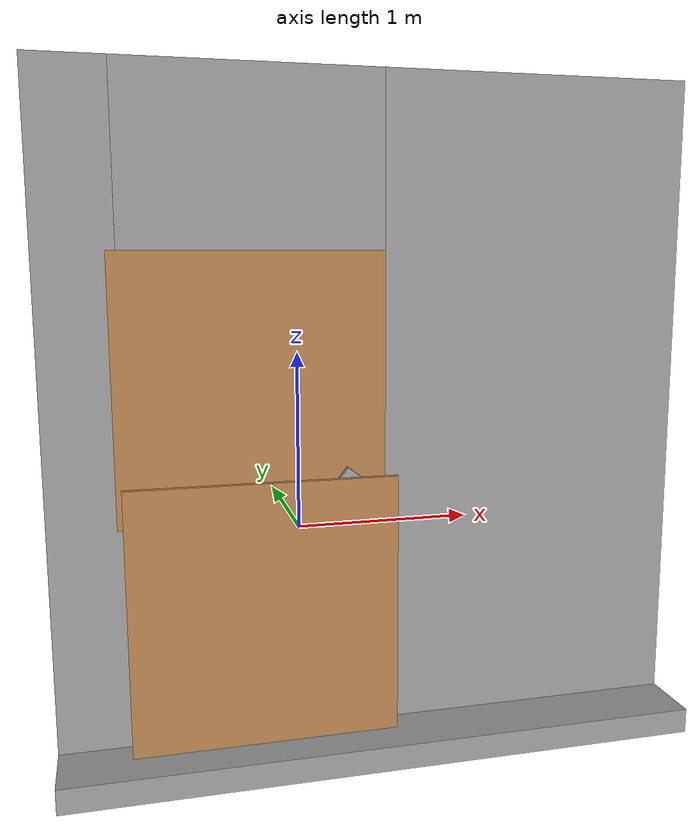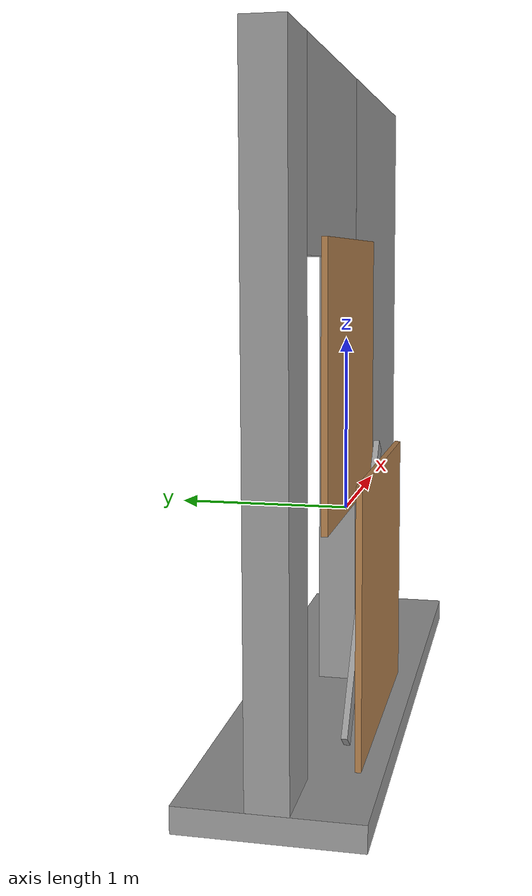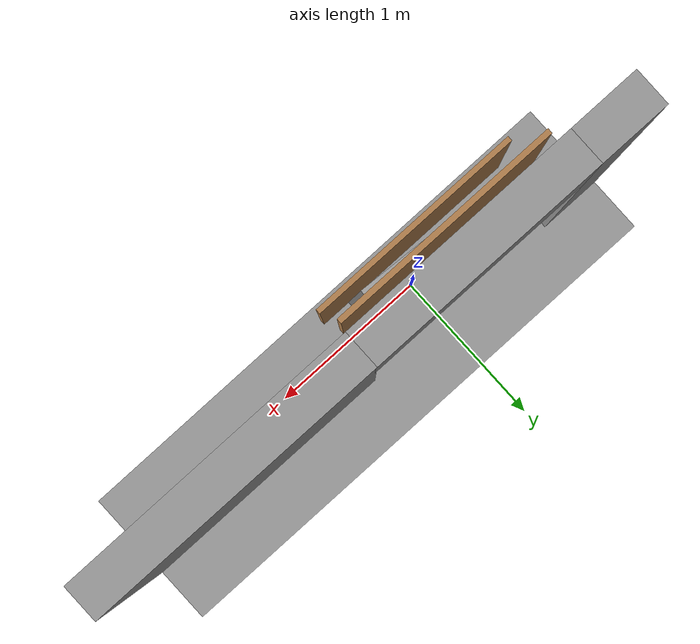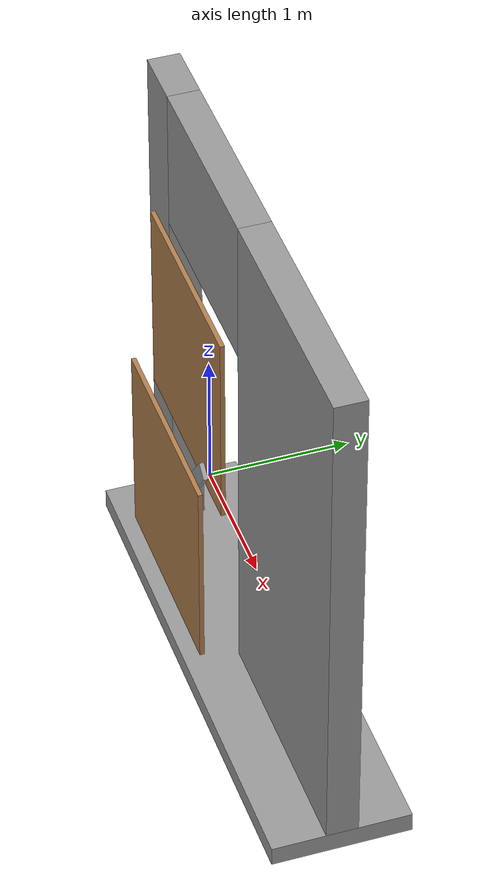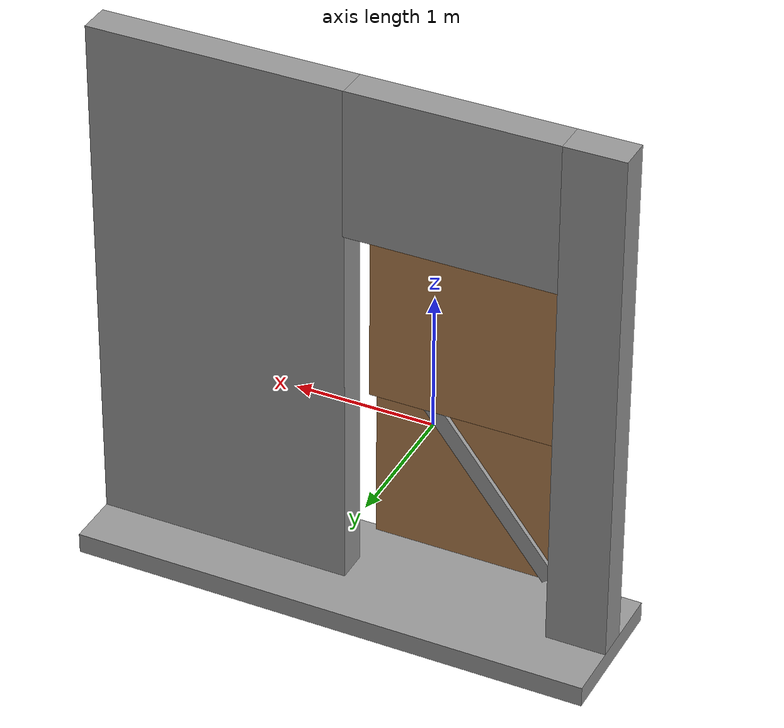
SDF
<?xml version='1.0'?>
<sdf version='1.6'>
  <model name='cool_door'>
    <link name='link_0'>
      <pose frame=''>0.482726 0.147701 -1.32003 0 -0 0</pose>
      <inertial>
        <mass>72.817</mass>
        <inertia>
          <ixx>0.0469854</ixx>
          <ixy>0</ixy>
          <ixz>0</ixz>
          <iyy>0.645558</iyy>
          <iyz>0</iyz>
          <izz>0.690545</izz>
        </inertia>
        <pose frame=''>0 0 0 0 -0 0</pose>
      </inertial>
      <self_collide>1</self_collide>
      <kinematic>0</kinematic>
      <visual name='visual'>
        <pose frame=''>0 0 0 0 -0 0</pose>
        <geometry>
          <box>
            <size>3.74384 1 0.147389</size>
          </box>
        </geometry>
        <material>
          <lighting>1</lighting>
          <script>
            <uri>file://media/materials/scripts/gazebo.material</uri>
            <name>Gazebo/Grey</name>
          </script>
          <ambient>1 1 1 1</ambient>
          <diffuse>1 1 1 1</diffuse>
          <specular>1 1 1 1</specular>
          <emissive>0 0 0 1</emissive>
          <shader type='vertex'>
            <normal_map>__default__</normal_map>
          </shader>
        </material>
        <cast_shadows>1</cast_shadows>
        <transparency>0</transparency>
      </visual>
      <collision name='collision'>
        <laser_retro>0</laser_retro>
        <max_contacts>10</max_contacts>
        <pose frame=''>0 0 0 0 -0 0</pose>
        <geometry>
          <box>
            <size>3.74384 1 0.147389</size>
          </box>
        </geometry>
        <surface>
          <friction>
            <ode>
              <mu>1</mu>
              <mu2>1</mu2>
              <fdir1>0 0 0</fdir1>
              <slip1>0</slip1>
              <slip2>0</slip2>
            </ode>
            <torsional>
              <coefficient>1</coefficient>
              <patch_radius>0</patch_radius>
              <surface_radius>0</surface_radius>
              <use_patch_radius>1</use_patch_radius>
              <ode>
                <slip>0</slip>
              </ode>
            </torsional>
          </friction>
          <bounce>
            <restitution_coefficient>0</restitution_coefficient>
            <threshold>1e+06</threshold>
          </bounce>
          <contact>
            <collide_without_contact>0</collide_without_contact>
            <collide_without_contact_bitmask>1</collide_without_contact_bitmask>
            <collide_bitmask>1</collide_bitmask>
            <ode>
              <soft_cfm>0</soft_cfm>
              <soft_erp>0.2</soft_erp>
              <kp>1e+13</kp>
              <kd>1</kd>
              <max_vel>0.01</max_vel>
              <min_depth>0</min_depth>
            </ode>
            <bullet>
              <split_impulse>1</split_impulse>
              <split_impulse_penetration_threshold>-0.01</split_impulse_penetration_threshold>
              <soft_cfm>0</soft_cfm>
              <soft_erp>0.2</soft_erp>
              <kp>1e+13</kp>
              <kd>1</kd>
            </bullet>
          </contact>
        </surface>
      </collision>
    </link>
    <link name='link_1'>
      <pose frame=''>-1.17386 0.14782 0.651511 3.14159 -0 3.14159</pose>
      <inertial>
        <mass>0.377791</mass>
        <inertia>
          <ixx>0.455246</ixx>
          <ixy>0</ixy>
          <ixz>0</ixz>
          <iyy>0.459404</iyy>
          <iyz>0</iyz>
          <izz>0.00752103</izz>
        </inertia>
        <pose frame=''>0 0 0 0 -0 0</pose>
      </inertial>
      <self_collide>0</self_collide>
      <kinematic>0</kinematic>
      <visual name='visual'>
        <pose frame=''>0 0 0 0 -0 0</pose>
        <geometry>
          <box>
            <size>0.430676 0.2311 3.79563</size>
          </box>
        </geometry>
        <material>
          <lighting>1</lighting>
          <script>
            <uri>file://media/materials/scripts/gazebo.material</uri>
            <name>Gazebo/Grey</name>
          </script>
          <ambient>1 1 1 1</ambient>
          <diffuse>1 1 1 1</diffuse>
          <specular>1 1 1 1</specular>
          <emissive>0 0 0 1</emissive>
          <shader type='pixel'>
            <normal_map>__default__</normal_map>
          </shader>
        </material>
        <cast_shadows>1</cast_shadows>
        <transparency>0</transparency>
      </visual>
      <collision name='collision'>
        <laser_retro>0</laser_retro>
        <max_contacts>10</max_contacts>
        <pose frame=''>0 0 0 0 -0 0</pose>
        <geometry>
          <box>
            <size>0.430676 0.2311 3.79563</size>
          </box>
        </geometry>
        <surface>
          <friction>
            <ode>
              <mu>1</mu>
              <mu2>1</mu2>
              <fdir1>0 0 0</fdir1>
              <slip1>0</slip1>
              <slip2>0</slip2>
            </ode>
            <torsional>
              <coefficient>1</coefficient>
              <patch_radius>0</patch_radius>
              <surface_radius>0</surface_radius>
              <use_patch_radius>1</use_patch_radius>
              <ode>
                <slip>0</slip>
              </ode>
            </torsional>
          </friction>
          <bounce>
            <restitution_coefficient>0</restitution_coefficient>
            <threshold>1e+06</threshold>
          </bounce>
          <contact>
            <collide_without_contact>0</collide_without_contact>
            <collide_without_contact_bitmask>1</collide_without_contact_bitmask>
            <collide_bitmask>1</collide_bitmask>
            <ode>
              <soft_cfm>0</soft_cfm>
              <soft_erp>0.2</soft_erp>
              <kp>1e+13</kp>
              <kd>1</kd>
              <max_vel>0.01</max_vel>
              <min_depth>0</min_depth>
            </ode>
            <bullet>
              <split_impulse>1</split_impulse>
              <split_impulse_penetration_threshold>-0.01</split_impulse_penetration_threshold>
              <soft_cfm>0</soft_cfm>
              <soft_erp>0.2</soft_erp>
              <kp>1e+13</kp>
              <kd>1</kd>
            </bullet>
          </contact>
        </surface>
      </collision>
    </link>
    <link name='link_1_clone'>
      <pose frame=''>1.43655 0.147637 0.651518 3.14159 -0 3.14159</pose>
      <inertial>
        <mass>1.61068</mass>
        <inertia>
          <ixx>1.94091</ixx>
          <ixy>0</ixy>
          <ixz>0</ixz>
          <iyy>2.38627</iyy>
          <iyz>0</iyz>
          <izz>0.459706</izz>
        </inertia>
        <pose frame=''>0 0 0 0 -0 0</pose>
      </inertial>
      <self_collide>0</self_collide>
      <kinematic>0</kinematic>
      <visual name='visual'>
        <pose frame=''>0 0 0 0 -0 0</pose>
        <geometry>
          <box>
            <size>1.83619 0.2311 3.79563</size>
          </box>
        </geometry>
        <material>
          <lighting>1</lighting>
          <script>
            <uri>file://media/materials/scripts/gazebo.material</uri>
            <name>Gazebo/Grey</name>
          </script>
          <ambient>1 1 1 1</ambient>
          <diffuse>1 1 1 1</diffuse>
          <specular>1 1 1 1</specular>
          <emissive>0 0 0 1</emissive>
          <shader type='pixel'>
            <normal_map>__default__</normal_map>
          </shader>
        </material>
        <cast_shadows>1</cast_shadows>
        <transparency>0</transparency>
      </visual>
      <collision name='collision'>
        <laser_retro>0</laser_retro>
        <max_contacts>10</max_contacts>
        <pose frame=''>0 0 0 0 -0 0</pose>
        <geometry>
          <box>
            <size>1.83619 0.2311 3.79563</size>
          </box>
        </geometry>
        <surface>
          <friction>
            <ode>
              <mu>1</mu>
              <mu2>1</mu2>
              <fdir1>0 0 0</fdir1>
              <slip1>0</slip1>
              <slip2>0</slip2>
            </ode>
            <torsional>
              <coefficient>1</coefficient>
              <patch_radius>0</patch_radius>
              <surface_radius>0</surface_radius>
              <use_patch_radius>1</use_patch_radius>
              <ode>
                <slip>0</slip>
              </ode>
            </torsional>
          </friction>
          <bounce>
            <restitution_coefficient>0</restitution_coefficient>
            <threshold>1e+06</threshold>
          </bounce>
          <contact>
            <collide_without_contact>0</collide_without_contact>
            <collide_without_contact_bitmask>1</collide_without_contact_bitmask>
            <collide_bitmask>1</collide_bitmask>
            <ode>
              <soft_cfm>0</soft_cfm>
              <soft_erp>0.2</soft_erp>
              <kp>1e+13</kp>
              <kd>1</kd>
              <max_vel>0.01</max_vel>
              <min_depth>0</min_depth>
            </ode>
            <bullet>
              <split_impulse>1</split_impulse>
              <split_impulse_penetration_threshold>-0.01</split_impulse_penetration_threshold>
              <soft_cfm>0</soft_cfm>
              <soft_erp>0.2</soft_erp>
              <kp>1e+13</kp>
              <kd>1</kd>
            </bullet>
          </contact>
        </surface>
      </collision>
    </link>
    <link name='link_1_clone_0'>
      <pose frame=''>-0.214547 0.147752 2.01077 3.14159 -0 3.14159</pose>
      <inertial>
        <mass>0.370362</mass>
        <inertia>
          <ixx>0.037456</ixx>
          <ixy>0</ixy>
          <ixz>0</ixz>
          <iyy>0.104126</iyy>
          <iyz>0</iyz>
          <izz>0.0699674</izz>
        </inertia>
        <pose frame=''>0 0 0 0 -0 0</pose>
      </inertial>
      <self_collide>0</self_collide>
      <kinematic>0</kinematic>
      <visual name='visual'>
        <pose frame=''>0 0 0 0 -0 0</pose>
        <geometry>
          <box>
            <size>1.4878 0.2311 1.07711</size>
          </box>
        </geometry>
        <material>
          <lighting>1</lighting>
          <script>
            <uri>file://media/materials/scripts/gazebo.material</uri>
            <name>Gazebo/Grey</name>
          </script>
          <ambient>1 1 1 1</ambient>
          <diffuse>1 1 1 1</diffuse>
          <specular>1 1 1 1</specular>
          <emissive>0 0 0 1</emissive>
          <shader type='pixel'>
            <normal_map>__default__</normal_map>
          </shader>
        </material>
        <cast_shadows>1</cast_shadows>
        <transparency>0</transparency>
      </visual>
      <collision name='collision'>
        <laser_retro>0</laser_retro>
        <max_contacts>10</max_contacts>
        <pose frame=''>0 0 0 0 -0 0</pose>
        <geometry>
          <box>
            <size>1.4878 0.2311 1.07711</size>
          </box>
        </geometry>
        <surface>
          <friction>
            <ode>
              <mu>1</mu>
              <mu2>1</mu2>
              <fdir1>0 0 0</fdir1>
              <slip1>0</slip1>
              <slip2>0</slip2>
            </ode>
            <torsional>
              <coefficient>1</coefficient>
              <patch_radius>0</patch_radius>
              <surface_radius>0</surface_radius>
              <use_patch_radius>1</use_patch_radius>
              <ode>
                <slip>0</slip>
              </ode>
            </torsional>
          </friction>
          <bounce>
            <restitution_coefficient>0</restitution_coefficient>
            <threshold>1e+06</threshold>
          </bounce>
          <contact>
            <collide_without_contact>0</collide_without_contact>
            <collide_without_contact_bitmask>1</collide_without_contact_bitmask>
            <collide_bitmask>1</collide_bitmask>
            <ode>
              <soft_cfm>0</soft_cfm>
              <soft_erp>0.2</soft_erp>
              <kp>1e+13</kp>
              <kd>1</kd>
              <max_vel>0.01</max_vel>
              <min_depth>0</min_depth>
            </ode>
            <bullet>
              <split_impulse>1</split_impulse>
              <split_impulse_penetration_threshold>-0.01</split_impulse_penetration_threshold>
              <soft_cfm>0</soft_cfm>
              <soft_erp>0.2</soft_erp>
              <kp>1e+13</kp>
              <kd>1</kd>
            </bullet>
          </contact>
        </surface>
      </collision>
    </link>
    <link name='link_1_clone_clone'>
      <pose frame=''>-0.231539 -0.23663 -0.427349 0 0 -3.14159</pose>
      <inertial>
        <mass>0.5</mass>
        <inertia>
          <ixx>0.00837342</ixx>
          <ixy>0</ixy>
          <ixz>0</ixz>
          <iyy>0.0204293</iyy>
          <iyz>0</iyz>
          <izz>0.0120681</izz>
        </inertia>
        <pose frame=''>0 0 0 0 -0 0</pose>
      </inertial>
      <self_collide>1</self_collide>
      <kinematic>0</kinematic>
      <visual name='visual'>
        <pose frame=''>0 0 0 0 -0 0</pose>
        <geometry>
          <box>
            <size>1.5 0.033849 1.5</size>
          </box>
        </geometry>
        <material>
          <lighting>1</lighting>
          <script>
            <uri>file://media/materials/scripts/gazebo.material</uri>
            <name>Gazebo/WoodFloor</name>
          </script>
          <ambient>1 0.3 0.3 1</ambient>
          <diffuse>1 0.7 0.7 1</diffuse>
          <specular>1 0.01 0.01 1</specular>
          <emissive>0 0 0 1</emissive>
          <shader type='pixel'>
            <normal_map>__default__</normal_map>
          </shader>
        </material>
        <cast_shadows>1</cast_shadows>
        <transparency>0</transparency>
      </visual>
      <collision name='collision'>
        <laser_retro>0</laser_retro>
        <max_contacts>10</max_contacts>
        <pose frame=''>0 0 0 0 -0 0</pose>
        <geometry>
          <box>
            <size>1.5 0.033849 1.5</size>
          </box>
        </geometry>
        <surface>
          <friction>
            <ode>
              <mu>1</mu>
              <mu2>1</mu2>
              <fdir1>0 0 0</fdir1>
              <slip1>0</slip1>
              <slip2>0</slip2>
            </ode>
            <torsional>
              <coefficient>1</coefficient>
              <patch_radius>0</patch_radius>
              <surface_radius>0</surface_radius>
              <use_patch_radius>1</use_patch_radius>
              <ode>
                <slip>0</slip>
              </ode>
            </torsional>
          </friction>
          <bounce>
            <restitution_coefficient>0</restitution_coefficient>
            <threshold>1e+06</threshold>
          </bounce>
          <contact>
            <collide_without_contact>0</collide_without_contact>
            <collide_without_contact_bitmask>1</collide_without_contact_bitmask>
            <collide_bitmask>1</collide_bitmask>
            <ode>
              <soft_cfm>0</soft_cfm>
              <soft_erp>0.2</soft_erp>
              <kp>1e+13</kp>
              <kd>1</kd>
              <max_vel>0.01</max_vel>
              <min_depth>0</min_depth>
            </ode>
            <bullet>
              <split_impulse>1</split_impulse>
              <split_impulse_penetration_threshold>-0.01</split_impulse_penetration_threshold>
              <soft_cfm>0</soft_cfm>
              <soft_erp>0.2</soft_erp>
              <kp>1e+13</kp>
              <kd>1</kd>
            </bullet>
          </contact>
        </surface>
      </collision>
    </link>
    <link name='link_1_clone_clone_clone'>
      <pose frame=''>-0.261382 -0.065195 0.81427 0 0 -3.14159</pose>
      <inertial>
        <mass>0.0638792</mass>
        <inertia>
          <ixx>0.00837342</ixx>
          <ixy>0</ixy>
          <ixz>0</ixz>
          <iyy>0.0204293</iyy>
          <iyz>0</iyz>
          <izz>0.0120681</izz>
        </inertia>
        <pose frame=''>0 0 0 0 -0 0</pose>
      </inertial>
      <self_collide>0</self_collide>
      <kinematic>0</kinematic>
      <visual name='visual'>
        <pose frame=''>0 0 0 0 -0 0</pose>
        <geometry>
          <box>
            <size>1.5 0.033849 1.5</size>
          </box>
        </geometry>
        <material>
          <lighting>1</lighting>
          <script>
            <uri>file://media/materials/scripts/gazebo.material</uri>
            <name>Gazebo/WoodFloor</name>
          </script>
          <ambient>0.3 1 0.3 1</ambient>
          <diffuse>0.7 1 0.7 1</diffuse>
          <specular>0.01 1 0.01 1</specular>
          <emissive>0 0 0 1</emissive>
          <shader type='pixel'>
            <normal_map>__default__</normal_map>
          </shader>
        </material>
        <cast_shadows>1</cast_shadows>
        <transparency>0</transparency>
      </visual>
      <collision name='collision'>
        <laser_retro>0</laser_retro>
        <max_contacts>10</max_contacts>
        <pose frame=''>0 0 0 0 -0 0</pose>
        <geometry>
          <box>
            <size>1.5 0.033849 1.5</size>
          </box>
        </geometry>
        <surface>
          <friction>
            <ode>
              <mu>1</mu>
              <mu2>1</mu2>
              <fdir1>0 0 0</fdir1>
              <slip1>0</slip1>
              <slip2>0</slip2>
            </ode>
            <torsional>
              <coefficient>1</coefficient>
              <patch_radius>0</patch_radius>
              <surface_radius>0</surface_radius>
              <use_patch_radius>1</use_patch_radius>
              <ode>
                <slip>0</slip>
              </ode>
            </torsional>
          </friction>
          <bounce>
            <restitution_coefficient>0</restitution_coefficient>
            <threshold>1e+06</threshold>
          </bounce>
          <contact>
            <collide_without_contact>0</collide_without_contact>
            <collide_without_contact_bitmask>1</collide_without_contact_bitmask>
            <collide_bitmask>1</collide_bitmask>
            <ode>
              <soft_cfm>0</soft_cfm>
              <soft_erp>0.2</soft_erp>
              <kp>1e+13</kp>
              <kd>1</kd>
              <max_vel>0.01</max_vel>
              <min_depth>0</min_depth>
            </ode>
            <bullet>
              <split_impulse>1</split_impulse>
              <split_impulse_penetration_threshold>-0.01</split_impulse_penetration_threshold>
              <soft_cfm>0</soft_cfm>
              <soft_erp>0.2</soft_erp>
              <kp>1e+13</kp>
              <kd>1</kd>
            </bullet>
          </contact>
        </surface>
      </collision>
    </link>
    <link name='link_1_clone_clone_clone_clone'>
      <pose frame=''>-0.252504 -0.141639 -0.383401 0 -0.66162 -3.14159</pose>
      <inertial>
        <mass>0.00615251</mass>
        <inertia>
          <ixx>0.00116645</ixx>
          <ixy>0</ixy>
          <ixz>0</ixz>
          <iyy>0.00117331</iyy>
          <iyz>0</iyz>
          <izz>8.04e-06</izz>
        </inertia>
        <pose frame=''>0 0 0 0 -0 0</pose>
      </inertial>
      <self_collide>0</self_collide>
      <kinematic>0</kinematic>
      <gravity>1</gravity>
      <visual name='visual'>
        <pose frame=''>0 0 0 0 -0 0</pose>
        <geometry>
          <box>
            <size>0.12014 0.033849 1.80416</size>
          </box>
        </geometry>
        <material>
          <lighting>1</lighting>
          <script>
            <uri>file://media/materials/scripts/gazebo.material</uri>
            <name>Gazebo/Grey</name>
          </script>
          <ambient>0 0 0 1</ambient>
          <diffuse>0 0 0 1</diffuse>
          <specular>0 0 0 1</specular>
          <emissive>0 0 0 1</emissive>
          <shader type='pixel'>
            <normal_map>__default__</normal_map>
          </shader>
        </material>
        <cast_shadows>1</cast_shadows>
        <transparency>0</transparency>
      </visual>
      <collision name='collision'>
        <laser_retro>0</laser_retro>
        <max_contacts>10</max_contacts>
        <pose frame=''>0 0 0 0 -0 0</pose>
        <geometry>
          <box>
            <size>0.12014 0.033849 1.80416</size>
          </box>
        </geometry>
        <surface>
          <friction>
            <ode>
              <mu>1</mu>
              <mu2>1</mu2>
              <fdir1>0 0 0</fdir1>
              <slip1>0</slip1>
              <slip2>0</slip2>
            </ode>
            <torsional>
              <coefficient>1</coefficient>
              <patch_radius>0</patch_radius>
              <surface_radius>0</surface_radius>
              <use_patch_radius>1</use_patch_radius>
              <ode>
                <slip>0</slip>
              </ode>
            </torsional>
          </friction>
          <bounce>
            <restitution_coefficient>0</restitution_coefficient>
            <threshold>1e+06</threshold>
          </bounce>
          <contact>
            <collide_without_contact>0</collide_without_contact>
            <collide_without_contact_bitmask>1</collide_without_contact_bitmask>
            <collide_bitmask>1</collide_bitmask>
            <ode>
              <soft_cfm>0</soft_cfm>
              <soft_erp>0.2</soft_erp>
              <kp>1e+13</kp>
              <kd>1</kd>
              <max_vel>0.01</max_vel>
              <min_depth>0</min_depth>
            </ode>
            <bullet>
              <split_impulse>1</split_impulse>
              <split_impulse_penetration_threshold>-0.01</split_impulse_penetration_threshold>
              <soft_cfm>0</soft_cfm>
              <soft_erp>0.2</soft_erp>
              <kp>1e+13</kp>
              <kd>1</kd>
            </bullet>
          </contact>
        </surface>
      </collision>
    </link>
    <joint name='link_0_JOINT_0' type='fixed'>
      <parent>link_0</parent>
      <child>link_1_clone</child>
      <pose frame=''>0 0 0 0 -0 0</pose>
      <physics>
        <ode>
          <limit>
            <cfm>0</cfm>
            <erp>0.2</erp>
          </limit>
          <suspension>
            <cfm>0</cfm>
            <erp>0.2</erp>
          </suspension>
        </ode>
      </physics>
    </joint>
    <joint name='link_0_JOINT_1' type='fixed'>
      <parent>link_0</parent>
      <child>link_1</child>
      <pose frame=''>0 0 0 0 -0 0</pose>
      <physics>
        <ode>
          <limit>
            <cfm>0</cfm>
            <erp>0.2</erp>
          </limit>
          <suspension>
            <cfm>0</cfm>
            <erp>0.2</erp>
          </suspension>
        </ode>
      </physics>
    </joint>
    <joint name='link_1_JOINT_0' type='fixed'>
      <parent>link_1</parent>
      <child>link_1_clone_0</child>
      <pose frame=''>0 0 0 0 -0 0</pose>
      <physics>
        <ode>
          <limit>
            <cfm>0</cfm>
            <erp>0.2</erp>
          </limit>
          <suspension>
            <cfm>0</cfm>
            <erp>0.2</erp>
          </suspension>
        </ode>
      </physics>
    </joint>
    <joint name='link_1_clone_JOINT_4' type='revolute'>
      <parent>link_1_clone</parent>
      <child>link_1_clone_clone_clone</child>
      <pose frame=''>-0.6 0 0.6 0 -0 0</pose>
      <axis>
        <xyz>0 1 0</xyz>
        <use_parent_model_frame>0</use_parent_model_frame>
        <limit>
          <lower>-1.79769e+308</lower>
          <upper>1.79769e+308</upper>
          <effort>-1</effort>
          <velocity>-1</velocity>
        </limit>
        <dynamics>
          <spring_reference>0</spring_reference>
          <spring_stiffness>0</spring_stiffness>
          <damping>0</damping>
          <friction>0</friction>
        </dynamics>
      </axis>
      <physics>
        <ode>
          <limit>
            <cfm>0</cfm>
            <erp>0.2</erp>
          </limit>
          <suspension>
            <cfm>0</cfm>
            <erp>0.2</erp>
          </suspension>
        </ode>
      </physics>
    </joint>
    <joint name='link_1_clone_JOINT_5' type='revolute'>
      <parent>link_1_clone</parent>
      <child>link_1_clone_clone</child>
      <pose frame=''>-0.6 0 -0.6 0 -0 0</pose>
      <axis>
        <xyz>0 1 0</xyz>
        <use_parent_model_frame>0</use_parent_model_frame>
        <limit>
          <lower>-1.79769e+308</lower>
          <upper>1.79769e+308</upper>
          <effort>-1</effort>
          <velocity>-1</velocity>
        </limit>
        <dynamics>
          <spring_reference>0</spring_reference>
          <spring_stiffness>0</spring_stiffness>
          <damping>0</damping>
          <friction>0</friction>
        </dynamics>
      </axis>
      <physics>
        <ode>
          <limit>
            <cfm>0</cfm>
            <erp>0.2</erp>
          </limit>
          <suspension>
            <cfm>0</cfm>
            <erp>0.2</erp>
          </suspension>
        </ode>
      </physics>
    </joint>
    <joint name='link_1_clone_clone_JOINT_3' type='revolute'>
      <parent>link_1_clone_clone</parent>
      <child>link_1_clone_clone_clone_clone</child>
      <pose frame=''>0 0 -0.8 0 -0 0</pose>
      <axis>
        <xyz>0 1 0</xyz>
        <use_parent_model_frame>0</use_parent_model_frame>
        <limit>
          <lower>-1.79769e+308</lower>
          <upper>1.79769e+308</upper>
          <effort>-1</effort>
          <velocity>-1</velocity>
        </limit>
        <dynamics>
          <spring_reference>0</spring_reference>
          <spring_stiffness>0</spring_stiffness>
          <damping>0</damping>
          <friction>0</friction>
        </dynamics>
      </axis>
      <physics>
        <ode>
          <limit>
            <cfm>0</cfm>
            <erp>0.2</erp>
          </limit>
          <suspension>
            <cfm>0</cfm>
            <erp>0.2</erp>
          </suspension>
        </ode>
      </physics>
    </joint>
    <joint name='link_1_clone_clone_clone_JOINT_2' type='revolute'>
      <parent>link_1_clone_clone_clone</parent>
      <child>link_1_clone_clone_clone_clone</child>
      <pose frame=''>0 0 0.8 0 -0 0</pose>
      <axis>
        <xyz>0 1 0</xyz>
        <use_parent_model_frame>0</use_parent_model_frame>
        <limit>
          <lower>-1.79769e+308</lower>
          <upper>1.79769e+308</upper>
          <effort>-1</effort>
          <velocity>-1</velocity>
        </limit>
        <dynamics>
          <spring_reference>0</spring_reference>
          <spring_stiffness>0</spring_stiffness>
          <damping>0</damping>
          <friction>0</friction>
        </dynamics>
      </axis>
      <physics>
        <ode>
          <limit>
            <cfm>0</cfm>
            <erp>0.2</erp>
          </limit>
          <suspension>
            <cfm>0</cfm>
            <erp>0.2</erp>
          </suspension>
        </ode>
      </physics>
    </joint>
    <static>0</static>
    <allow_auto_disable>1</allow_auto_disable>
  </model>
</sdf>
